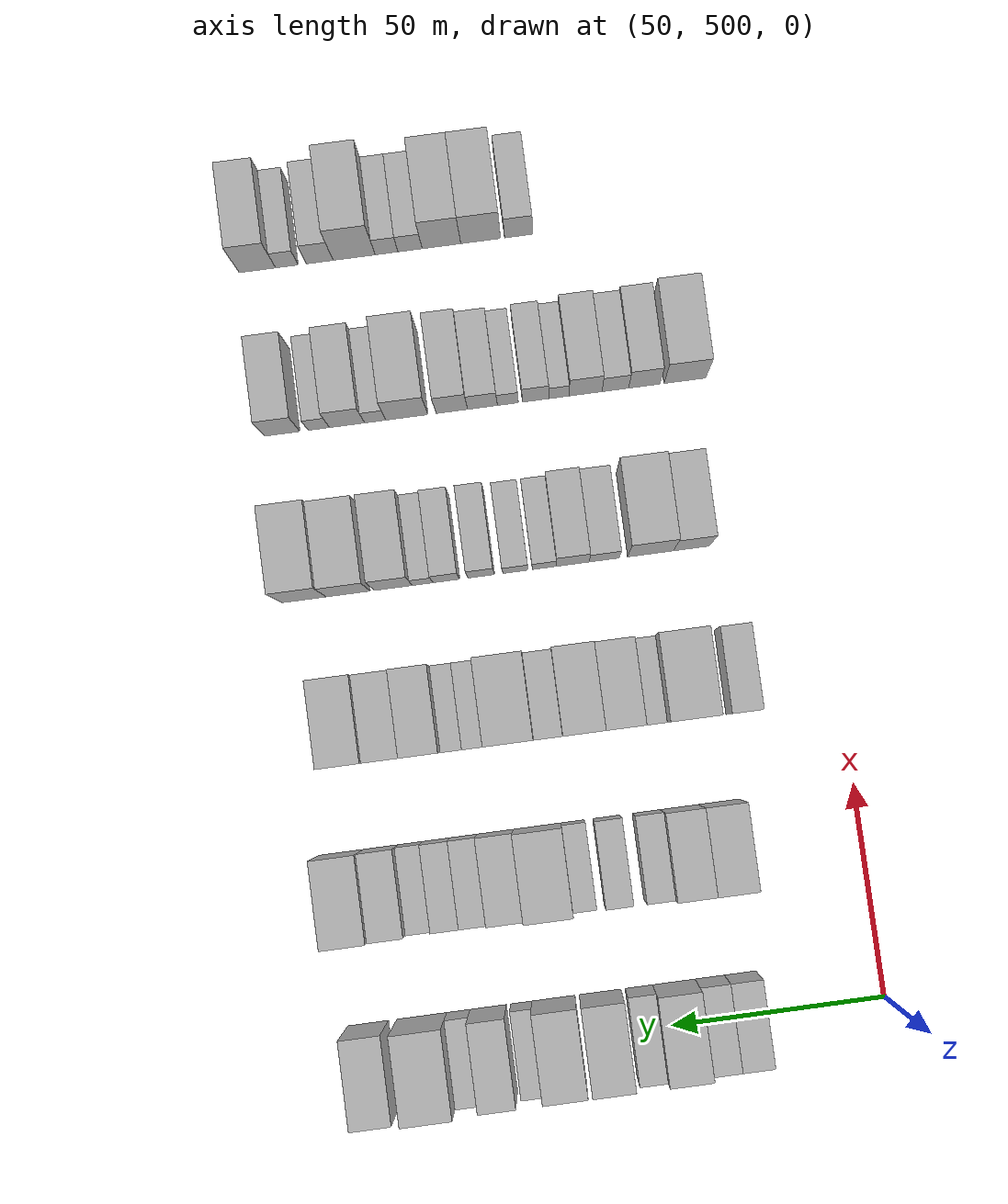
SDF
<sdf version="1.6">
 <world name="default">
  <model name="building_129">
   <static>1</static>
   <pose>50.0000 532.6095 0 0.000000 0.000000 0.000000</pose>
   <link name="link">
    <pose>0 0 7.50 0 0 0</pose>
    <collision name="collision"><geometry><box><size>20.0000 7.3987 15.0000</size></box></geometry></collision>
    <visual name="visual">
     <cast_shadows>0</cast_shadows>
     <geometry><box><size>20.0000 7.3987 15.0000</size></box></geometry>
     <material>
      <script>
       <uri>model://HANNAS_wall/materials/scripts</uri>
       <uri>model://HANNAS_wall/materials/textures</uri>
       <name>vrc/HANNAS_wall</name>
      </script>
     </material>
    </visual>
   </link>
  </model>
  <model name="building_130">
   <static>1</static>
   <pose>50.0000 539.7570 0 0.000000 0.000000 0.000000</pose>
   <link name="link">
    <pose>0 0 7.50 0 0 0</pose>
    <collision name="collision"><geometry><box><size>20.0000 6.8963 15.0000</size></box></geometry></collision>
    <visual name="visual">
     <cast_shadows>0</cast_shadows>
     <geometry><box><size>20.0000 6.8963 15.0000</size></box></geometry>
     <material>
      <script>
       <uri>model://HANNAS_wall/materials/scripts</uri>
       <uri>model://HANNAS_wall/materials/textures</uri>
       <name>vrc/HANNAS_wall</name>
      </script>
     </material>
    </visual>
   </link>
  </model>
  <model name="building_131">
   <static>1</static>
   <pose>50.0000 548.2074 0 0.000000 0.000000 0.000000</pose>
   <link name="link">
    <pose>0 0 10.50 0 0 0</pose>
    <collision name="collision"><geometry><box><size>20.0000 10.0045 21.0000</size></box></geometry></collision>
    <visual name="visual">
     <cast_shadows>0</cast_shadows>
     <geometry><box><size>20.0000 10.0045 21.0000</size></box></geometry>
     <material>
      <script>
       <uri>model://HANNAS_wall/materials/scripts</uri>
       <uri>model://HANNAS_wall/materials/textures</uri>
       <name>vrc/HANNAS_wall</name>
      </script>
     </material>
    </visual>
   </link>
  </model>
  <model name="building_132">
   <static>1</static>
   <pose>50.0000 556.4147 0 0.000000 0.000000 0.000000</pose>
   <link name="link">
    <pose>0 0 7.50 0 0 0</pose>
    <collision name="collision"><geometry><box><size>20.0000 6.4102 15.0000</size></box></geometry></collision>
    <visual name="visual">
     <cast_shadows>0</cast_shadows>
     <geometry><box><size>20.0000 6.4102 15.0000</size></box></geometry>
     <material>
      <script>
       <uri>model://HANNAS_wall/materials/scripts</uri>
       <uri>model://HANNAS_wall/materials/textures</uri>
       <name>vrc/HANNAS_wall</name>
      </script>
     </material>
    </visual>
   </link>
  </model>
  <model name="building_133">
   <static>1</static>
   <pose>50.0000 565.5105 0 0.000000 0.000000 0.000000</pose>
   <link name="link">
    <pose>0 0 10.50 0 0 0</pose>
    <collision name="collision"><geometry><box><size>20.0000 9.7813 21.0000</size></box></geometry></collision>
    <visual name="visual">
     <cast_shadows>0</cast_shadows>
     <geometry><box><size>20.0000 9.7813 21.0000</size></box></geometry>
     <material>
      <script>
       <uri>model://HANNAS_wall/materials/scripts</uri>
       <uri>model://HANNAS_wall/materials/textures</uri>
       <name>vrc/HANNAS_wall</name>
      </script>
     </material>
    </visual>
   </link>
  </model>
  <model name="building_134">
   <static>1</static>
   <pose>50.0000 576.4896 0 0.000000 0.000000 0.000000</pose>
   <link name="link">
    <pose>0 0 10.50 0 0 0</pose>
    <collision name="collision"><geometry><box><size>20.0000 10.1770 21.0000</size></box></geometry></collision>
    <visual name="visual">
     <cast_shadows>0</cast_shadows>
     <geometry><box><size>20.0000 10.1770 21.0000</size></box></geometry>
     <material>
      <script>
       <uri>model://HANNAS_wall/materials/scripts</uri>
       <uri>model://HANNAS_wall/materials/textures</uri>
       <name>vrc/HANNAS_wall</name>
      </script>
     </material>
    </visual>
   </link>
  </model>
  <model name="building_135">
   <static>1</static>
   <pose>50.0000 584.0382 0 0.000000 0.000000 0.000000</pose>
   <link name="link">
    <pose>0 0 6.00 0 0 0</pose>
    <collision name="collision"><geometry><box><size>20.0000 4.9200 12.0000</size></box></geometry></collision>
    <visual name="visual">
     <cast_shadows>0</cast_shadows>
     <geometry><box><size>20.0000 4.9200 12.0000</size></box></geometry>
     <material>
      <script>
       <uri>model://HANNAS_wall/materials/scripts</uri>
       <uri>model://HANNAS_wall/materials/textures</uri>
       <name>vrc/HANNAS_wall</name>
      </script>
     </material>
    </visual>
   </link>
  </model>
  <model name="building_136">
   <static>1</static>
   <pose>50.0000 591.7661 0 0.000000 0.000000 0.000000</pose>
   <link name="link">
    <pose>0 0 10.50 0 0 0</pose>
    <collision name="collision"><geometry><box><size>20.0000 8.5358 21.0000</size></box></geometry></collision>
    <visual name="visual">
     <cast_shadows>0</cast_shadows>
     <geometry><box><size>20.0000 8.5358 21.0000</size></box></geometry>
     <material>
      <script>
       <uri>model://HANNAS_wall/materials/scripts</uri>
       <uri>model://HANNAS_wall/materials/textures</uri>
       <name>vrc/HANNAS_wall</name>
      </script>
     </material>
    </visual>
   </link>
  </model>
  <model name="building_137">
   <static>1</static>
   <pose>50.0000 598.7545 0 0.000000 0.000000 0.000000</pose>
   <link name="link">
    <pose>0 0 6.00 0 0 0</pose>
    <collision name="collision"><geometry><box><size>20.0000 5.4409 12.0000</size></box></geometry></collision>
    <visual name="visual">
     <cast_shadows>0</cast_shadows>
     <geometry><box><size>20.0000 5.4409 12.0000</size></box></geometry>
     <material>
      <script>
       <uri>model://HANNAS_wall/materials/scripts</uri>
       <uri>model://HANNAS_wall/materials/textures</uri>
       <name>vrc/HANNAS_wall</name>
      </script>
     </material>
    </visual>
   </link>
  </model>
  <model name="building_138">
   <static>1</static>
   <pose>50.0000 607.3032 0 0.000000 0.000000 0.000000</pose>
   <link name="link">
    <pose>0 0 12.00 0 0 0</pose>
    <collision name="collision"><geometry><box><size>20.0000 11.6565 24.0000</size></box></geometry></collision>
    <visual name="visual">
     <cast_shadows>0</cast_shadows>
     <geometry><box><size>20.0000 11.6565 24.0000</size></box></geometry>
     <material>
      <script>
       <uri>model://HANNAS_wall/materials/scripts</uri>
       <uri>model://HANNAS_wall/materials/textures</uri>
       <name>vrc/HANNAS_wall</name>
      </script>
     </material>
    </visual>
   </link>
  </model>
  <model name="building_139">
   <static>1</static>
   <pose>50.0000 619.8653 0 0.000000 0.000000 0.000000</pose>
   <link name="link">
    <pose>0 0 10.50 0 0 0</pose>
    <collision name="collision"><geometry><box><size>20.0000 9.4678 21.0000</size></box></geometry></collision>
    <visual name="visual">
     <cast_shadows>0</cast_shadows>
     <geometry><box><size>20.0000 9.4678 21.0000</size></box></geometry>
     <material>
      <script>
       <uri>model://HANNAS_wall/materials/scripts</uri>
       <uri>model://HANNAS_wall/materials/textures</uri>
       <name>vrc/HANNAS_wall</name>
      </script>
     </material>
    </visual>
   </link>
  </model>
  <model name="building_268">
   <static>1</static>
   <pose>90.0000 532.1376 0 0.000000 0.000000 0.000000</pose>
   <link name="link">
    <pose>0 0 10.50 0 0 0</pose>
    <collision name="collision"><geometry><box><size>20.0000 9.5505 21.0000</size></box></geometry></collision>
    <visual name="visual">
     <cast_shadows>0</cast_shadows>
     <geometry><box><size>20.0000 9.5505 21.0000</size></box></geometry>
     <material>
      <script>
       <uri>model://HANNAS_wall/materials/scripts</uri>
       <uri>model://HANNAS_wall/materials/textures</uri>
       <name>vrc/HANNAS_wall</name>
      </script>
     </material>
    </visual>
   </link>
  </model>
  <model name="building_269">
   <static>1</static>
   <pose>90.0000 541.4288 0 0.000000 0.000000 0.000000</pose>
   <link name="link">
    <pose>0 0 10.50 0 0 0</pose>
    <collision name="collision"><geometry><box><size>20.0000 9.0320 21.0000</size></box></geometry></collision>
    <visual name="visual">
     <cast_shadows>0</cast_shadows>
     <geometry><box><size>20.0000 9.0320 21.0000</size></box></geometry>
     <material>
      <script>
       <uri>model://HANNAS_wall/materials/scripts</uri>
       <uri>model://HANNAS_wall/materials/textures</uri>
       <name>vrc/HANNAS_wall</name>
      </script>
     </material>
    </visual>
   </link>
  </model>
  <model name="building_270">
   <static>1</static>
   <pose>90.0000 549.2292 0 0.000000 0.000000 0.000000</pose>
   <link name="link">
    <pose>0 0 7.50 0 0 0</pose>
    <collision name="collision"><geometry><box><size>20.0000 6.5686 15.0000</size></box></geometry></collision>
    <visual name="visual">
     <cast_shadows>0</cast_shadows>
     <geometry><box><size>20.0000 6.5686 15.0000</size></box></geometry>
     <material>
      <script>
       <uri>model://HANNAS_wall/materials/scripts</uri>
       <uri>model://HANNAS_wall/materials/textures</uri>
       <name>vrc/HANNAS_wall</name>
      </script>
     </material>
    </visual>
   </link>
  </model>
  <model name="building_271">
   <static>1</static>
   <pose>90.0000 558.6888 0 0.000000 0.000000 0.000000</pose>
   <link name="link">
    <pose>0 0 7.50 0 0 0</pose>
    <collision name="collision"><geometry><box><size>20.0000 6.3506 15.0000</size></box></geometry></collision>
    <visual name="visual">
     <cast_shadows>0</cast_shadows>
     <geometry><box><size>20.0000 6.3506 15.0000</size></box></geometry>
     <material>
      <script>
       <uri>model://HANNAS_wall/materials/scripts</uri>
       <uri>model://HANNAS_wall/materials/textures</uri>
       <name>vrc/HANNAS_wall</name>
      </script>
     </material>
    </visual>
   </link>
  </model>
  <model name="building_272">
   <static>1</static>
   <pose>90.0000 566.6021 0 0.000000 0.000000 0.000000</pose>
   <link name="link">
    <pose>0 0 6.00 0 0 0</pose>
    <collision name="collision"><geometry><box><size>20.0000 5.4760 12.0000</size></box></geometry></collision>
    <visual name="visual">
     <cast_shadows>0</cast_shadows>
     <geometry><box><size>20.0000 5.4760 12.0000</size></box></geometry>
     <material>
      <script>
       <uri>model://HANNAS_wall/materials/scripts</uri>
       <uri>model://HANNAS_wall/materials/textures</uri>
       <name>vrc/HANNAS_wall</name>
      </script>
     </material>
    </visual>
   </link>
  </model>
  <model name="building_273">
   <static>1</static>
   <pose>90.0000 574.9478 0 0.000000 0.000000 0.000000</pose>
   <link name="link">
    <pose>0 0 12.00 0 0 0</pose>
    <collision name="collision"><geometry><box><size>20.0000 11.2155 24.0000</size></box></geometry></collision>
    <visual name="visual">
     <cast_shadows>0</cast_shadows>
     <geometry><box><size>20.0000 11.2155 24.0000</size></box></geometry>
     <material>
      <script>
       <uri>model://HANNAS_wall/materials/scripts</uri>
       <uri>model://HANNAS_wall/materials/textures</uri>
       <name>vrc/HANNAS_wall</name>
      </script>
     </material>
    </visual>
   </link>
  </model>
  <model name="building_274">
   <static>1</static>
   <pose>90.0000 584.8134 0 0.000000 0.000000 0.000000</pose>
   <link name="link">
    <pose>0 0 9.00 0 0 0</pose>
    <collision name="collision"><geometry><box><size>20.0000 8.5156 18.0000</size></box></geometry></collision>
    <visual name="visual">
     <cast_shadows>0</cast_shadows>
     <geometry><box><size>20.0000 8.5156 18.0000</size></box></geometry>
     <material>
      <script>
       <uri>model://HANNAS_wall/materials/scripts</uri>
       <uri>model://HANNAS_wall/materials/textures</uri>
       <name>vrc/HANNAS_wall</name>
      </script>
     </material>
    </visual>
   </link>
  </model>
  <model name="building_275">
   <static>1</static>
   <pose>90.0000 592.2233 0 0.000000 0.000000 0.000000</pose>
   <link name="link">
    <pose>0 0 7.50 0 0 0</pose>
    <collision name="collision"><geometry><box><size>20.0000 6.3043 15.0000</size></box></geometry></collision>
    <visual name="visual">
     <cast_shadows>0</cast_shadows>
     <geometry><box><size>20.0000 6.3043 15.0000</size></box></geometry>
     <material>
      <script>
       <uri>model://HANNAS_wall/materials/scripts</uri>
       <uri>model://HANNAS_wall/materials/textures</uri>
       <name>vrc/HANNAS_wall</name>
      </script>
     </material>
    </visual>
   </link>
  </model>
  <model name="building_276">
   <static>1</static>
   <pose>90.0000 598.5919 0 0.000000 0.000000 0.000000</pose>
   <link name="link">
    <pose>0 0 7.50 0 0 0</pose>
    <collision name="collision"><geometry><box><size>20.0000 6.4328 15.0000</size></box></geometry></collision>
    <visual name="visual">
     <cast_shadows>0</cast_shadows>
     <geometry><box><size>20.0000 6.4328 15.0000</size></box></geometry>
     <material>
      <script>
       <uri>model://HANNAS_wall/materials/scripts</uri>
       <uri>model://HANNAS_wall/materials/textures</uri>
       <name>vrc/HANNAS_wall</name>
      </script>
     </material>
    </visual>
   </link>
  </model>
  <model name="building_277">
   <static>1</static>
   <pose>90.0000 604.7399 0 0.000000 0.000000 0.000000</pose>
   <link name="link">
    <pose>0 0 6.00 0 0 0</pose>
    <collision name="collision"><geometry><box><size>20.0000 5.8633 12.0000</size></box></geometry></collision>
    <visual name="visual">
     <cast_shadows>0</cast_shadows>
     <geometry><box><size>20.0000 5.8633 12.0000</size></box></geometry>
     <material>
      <script>
       <uri>model://HANNAS_wall/materials/scripts</uri>
       <uri>model://HANNAS_wall/materials/textures</uri>
       <name>vrc/HANNAS_wall</name>
      </script>
     </material>
    </visual>
   </link>
  </model>
  <model name="building_278">
   <static>1</static>
   <pose>90.0000 611.7809 0 0.000000 0.000000 0.000000</pose>
   <link name="link">
    <pose>0 0 9.00 0 0 0</pose>
    <collision name="collision"><geometry><box><size>20.0000 8.2188 18.0000</size></box></geometry></collision>
    <visual name="visual">
     <cast_shadows>0</cast_shadows>
     <geometry><box><size>20.0000 8.2188 18.0000</size></box></geometry>
     <material>
      <script>
       <uri>model://HANNAS_wall/materials/scripts</uri>
       <uri>model://HANNAS_wall/materials/textures</uri>
       <name>vrc/HANNAS_wall</name>
      </script>
     </material>
    </visual>
   </link>
  </model>
  <model name="building_279">
   <static>1</static>
   <pose>90.0000 621.0968 0 0.000000 0.000000 0.000000</pose>
   <link name="link">
    <pose>0 0 10.50 0 0 0</pose>
    <collision name="collision"><geometry><box><size>20.0000 10.4128 21.0000</size></box></geometry></collision>
    <visual name="visual">
     <cast_shadows>0</cast_shadows>
     <geometry><box><size>20.0000 10.4128 21.0000</size></box></geometry>
     <material>
      <script>
       <uri>model://HANNAS_wall/materials/scripts</uri>
       <uri>model://HANNAS_wall/materials/textures</uri>
       <name>vrc/HANNAS_wall</name>
      </script>
     </material>
    </visual>
   </link>
  </model>
  <model name="building_413">
   <static>1</static>
   <pose>130.0000 523.8679 0 0.000000 0.000000 0.000000</pose>
   <link name="link">
    <pose>0 0 7.50 0 0 0</pose>
    <collision name="collision"><geometry><box><size>20.0000 7.2931 15.0000</size></box></geometry></collision>
    <visual name="visual">
     <cast_shadows>0</cast_shadows>
     <geometry><box><size>20.0000 7.2931 15.0000</size></box></geometry>
     <material>
      <script>
       <uri>model://HANNAS_wall/materials/scripts</uri>
       <uri>model://HANNAS_wall/materials/textures</uri>
       <name>vrc/HANNAS_wall</name>
      </script>
     </material>
    </visual>
   </link>
  </model>
  <model name="building_414">
   <static>1</static>
   <pose>130.0000 536.3683 0 0.000000 0.000000 0.000000</pose>
   <link name="link">
    <pose>0 0 12.00 0 0 0</pose>
    <collision name="collision"><geometry><box><size>20.0000 11.7076 24.0000</size></box></geometry></collision>
    <visual name="visual">
     <cast_shadows>0</cast_shadows>
     <geometry><box><size>20.0000 11.7076 24.0000</size></box></geometry>
     <material>
      <script>
       <uri>model://HANNAS_wall/materials/scripts</uri>
       <uri>model://HANNAS_wall/materials/textures</uri>
       <name>vrc/HANNAS_wall</name>
      </script>
     </material>
    </visual>
   </link>
  </model>
  <model name="building_415">
   <static>1</static>
   <pose>130.0000 544.7975 0 0.000000 0.000000 0.000000</pose>
   <link name="link">
    <pose>0 0 6.00 0 0 0</pose>
    <collision name="collision"><geometry><box><size>20.0000 5.1509 12.0000</size></box></geometry></collision>
    <visual name="visual">
     <cast_shadows>0</cast_shadows>
     <geometry><box><size>20.0000 5.1509 12.0000</size></box></geometry>
     <material>
      <script>
       <uri>model://HANNAS_wall/materials/scripts</uri>
       <uri>model://HANNAS_wall/materials/textures</uri>
       <name>vrc/HANNAS_wall</name>
      </script>
     </material>
    </visual>
   </link>
  </model>
  <model name="building_416">
   <static>1</static>
   <pose>130.0000 552.0132 0 0.000000 0.000000 0.000000</pose>
   <link name="link">
    <pose>0 0 10.50 0 0 0</pose>
    <collision name="collision"><geometry><box><size>20.0000 9.2804 21.0000</size></box></geometry></collision>
    <visual name="visual">
     <cast_shadows>0</cast_shadows>
     <geometry><box><size>20.0000 9.2804 21.0000</size></box></geometry>
     <material>
      <script>
       <uri>model://HANNAS_wall/materials/scripts</uri>
       <uri>model://HANNAS_wall/materials/textures</uri>
       <name>vrc/HANNAS_wall</name>
      </script>
     </material>
    </visual>
   </link>
  </model>
  <model name="building_417">
   <static>1</static>
   <pose>130.0000 561.5154 0 0.000000 0.000000 0.000000</pose>
   <link name="link">
    <pose>0 0 12.00 0 0 0</pose>
    <collision name="collision"><geometry><box><size>20.0000 9.7239 24.0000</size></box></geometry></collision>
    <visual name="visual">
     <cast_shadows>0</cast_shadows>
     <geometry><box><size>20.0000 9.7239 24.0000</size></box></geometry>
     <material>
      <script>
       <uri>model://HANNAS_wall/materials/scripts</uri>
       <uri>model://HANNAS_wall/materials/textures</uri>
       <name>vrc/HANNAS_wall</name>
      </script>
     </material>
    </visual>
   </link>
  </model>
  <model name="building_418">
   <static>1</static>
   <pose>130.0000 569.6986 0 0.000000 0.000000 0.000000</pose>
   <link name="link">
    <pose>0 0 7.50 0 0 0</pose>
    <collision name="collision"><geometry><box><size>20.0000 6.6426 15.0000</size></box></geometry></collision>
    <visual name="visual">
     <cast_shadows>0</cast_shadows>
     <geometry><box><size>20.0000 6.6426 15.0000</size></box></geometry>
     <material>
      <script>
       <uri>model://HANNAS_wall/materials/scripts</uri>
       <uri>model://HANNAS_wall/materials/textures</uri>
       <name>vrc/HANNAS_wall</name>
      </script>
     </material>
    </visual>
   </link>
  </model>
  <model name="building_419">
   <static>1</static>
   <pose>130.0000 578.7010 0 0.000000 0.000000 0.000000</pose>
   <link name="link">
    <pose>0 0 12.00 0 0 0</pose>
    <collision name="collision"><geometry><box><size>20.0000 11.3622 24.0000</size></box></geometry></collision>
    <visual name="visual">
     <cast_shadows>0</cast_shadows>
     <geometry><box><size>20.0000 11.3622 24.0000</size></box></geometry>
     <material>
      <script>
       <uri>model://HANNAS_wall/materials/scripts</uri>
       <uri>model://HANNAS_wall/materials/textures</uri>
       <name>vrc/HANNAS_wall</name>
      </script>
     </material>
    </visual>
   </link>
  </model>
  <model name="building_420">
   <static>1</static>
   <pose>130.0000 586.9950 0 0.000000 0.000000 0.000000</pose>
   <link name="link">
    <pose>0 0 6.00 0 0 0</pose>
    <collision name="collision"><geometry><box><size>20.0000 5.2257 12.0000</size></box></geometry></collision>
    <visual name="visual">
     <cast_shadows>0</cast_shadows>
     <geometry><box><size>20.0000 5.2257 12.0000</size></box></geometry>
     <material>
      <script>
       <uri>model://HANNAS_wall/materials/scripts</uri>
       <uri>model://HANNAS_wall/materials/textures</uri>
       <name>vrc/HANNAS_wall</name>
      </script>
     </material>
    </visual>
   </link>
  </model>
  <model name="building_421">
   <static>1</static>
   <pose>130.0000 592.0658 0 0.000000 0.000000 0.000000</pose>
   <link name="link">
    <pose>0 0 6.00 0 0 0</pose>
    <collision name="collision"><geometry><box><size>20.0000 4.9160 12.0000</size></box></geometry></collision>
    <visual name="visual">
     <cast_shadows>0</cast_shadows>
     <geometry><box><size>20.0000 4.9160 12.0000</size></box></geometry>
     <material>
      <script>
       <uri>model://HANNAS_wall/materials/scripts</uri>
       <uri>model://HANNAS_wall/materials/textures</uri>
       <name>vrc/HANNAS_wall</name>
      </script>
     </material>
    </visual>
   </link>
  </model>
  <model name="building_422">
   <static>1</static>
   <pose>130.0000 599.0145 0 0.000000 0.000000 0.000000</pose>
   <link name="link">
    <pose>0 0 10.50 0 0 0</pose>
    <collision name="collision"><geometry><box><size>20.0000 8.9814 21.0000</size></box></geometry></collision>
    <visual name="visual">
     <cast_shadows>0</cast_shadows>
     <geometry><box><size>20.0000 8.9814 21.0000</size></box></geometry>
     <material>
      <script>
       <uri>model://HANNAS_wall/materials/scripts</uri>
       <uri>model://HANNAS_wall/materials/textures</uri>
       <name>vrc/HANNAS_wall</name>
      </script>
     </material>
    </visual>
   </link>
  </model>
  <model name="building_423">
   <static>1</static>
   <pose>130.0000 607.8346 0 0.000000 0.000000 0.000000</pose>
   <link name="link">
    <pose>0 0 9.00 0 0 0</pose>
    <collision name="collision"><geometry><box><size>20.0000 8.6588 18.0000</size></box></geometry></collision>
    <visual name="visual">
     <cast_shadows>0</cast_shadows>
     <geometry><box><size>20.0000 8.6588 18.0000</size></box></geometry>
     <material>
      <script>
       <uri>model://HANNAS_wall/materials/scripts</uri>
       <uri>model://HANNAS_wall/materials/textures</uri>
       <name>vrc/HANNAS_wall</name>
      </script>
     </material>
    </visual>
   </link>
  </model>
  <model name="building_424">
   <static>1</static>
   <pose>130.0000 617.2051 0 0.000000 0.000000 0.000000</pose>
   <link name="link">
    <pose>0 0 10.50 0 0 0</pose>
    <collision name="collision"><geometry><box><size>20.0000 10.0821 21.0000</size></box></geometry></collision>
    <visual name="visual">
     <cast_shadows>0</cast_shadows>
     <geometry><box><size>20.0000 10.0821 21.0000</size></box></geometry>
     <material>
      <script>
       <uri>model://HANNAS_wall/materials/scripts</uri>
       <uri>model://HANNAS_wall/materials/textures</uri>
       <name>vrc/HANNAS_wall</name>
      </script>
     </material>
    </visual>
   </link>
  </model>
  <model name="building_558">
   <static>1</static>
   <pose>170.0000 530.1479 0 0.000000 0.000000 0.000000</pose>
   <link name="link">
    <pose>0 0 10.50 0 0 0</pose>
    <collision name="collision"><geometry><box><size>20.0000 8.6776 21.0000</size></box></geometry></collision>
    <visual name="visual">
     <cast_shadows>0</cast_shadows>
     <geometry><box><size>20.0000 8.6776 21.0000</size></box></geometry>
     <material>
      <script>
       <uri>model://HANNAS_wall/materials/scripts</uri>
       <uri>model://HANNAS_wall/materials/textures</uri>
       <name>vrc/HANNAS_wall</name>
      </script>
     </material>
    </visual>
   </link>
  </model>
  <model name="building_559">
   <static>1</static>
   <pose>170.0000 539.9513 0 0.000000 0.000000 0.000000</pose>
   <link name="link">
    <pose>0 0 12.00 0 0 0</pose>
    <collision name="collision"><geometry><box><size>20.0000 10.9292 24.0000</size></box></geometry></collision>
    <visual name="visual">
     <cast_shadows>0</cast_shadows>
     <geometry><box><size>20.0000 10.9292 24.0000</size></box></geometry>
     <material>
      <script>
       <uri>model://HANNAS_wall/materials/scripts</uri>
       <uri>model://HANNAS_wall/materials/textures</uri>
       <name>vrc/HANNAS_wall</name>
      </script>
     </material>
    </visual>
   </link>
  </model>
  <model name="building_560">
   <static>1</static>
   <pose>170.0000 551.0055 0 0.000000 0.000000 0.000000</pose>
   <link name="link">
    <pose>0 0 7.50 0 0 0</pose>
    <collision name="collision"><geometry><box><size>20.0000 7.1792 15.0000</size></box></geometry></collision>
    <visual name="visual">
     <cast_shadows>0</cast_shadows>
     <geometry><box><size>20.0000 7.1792 15.0000</size></box></geometry>
     <material>
      <script>
       <uri>model://HANNAS_wall/materials/scripts</uri>
       <uri>model://HANNAS_wall/materials/textures</uri>
       <name>vrc/HANNAS_wall</name>
      </script>
     </material>
    </visual>
   </link>
  </model>
  <model name="building_561">
   <static>1</static>
   <pose>170.0000 558.4996 0 0.000000 0.000000 0.000000</pose>
   <link name="link">
    <pose>0 0 9.00 0 0 0</pose>
    <collision name="collision"><geometry><box><size>20.0000 7.8091 18.0000</size></box></geometry></collision>
    <visual name="visual">
     <cast_shadows>0</cast_shadows>
     <geometry><box><size>20.0000 7.8091 18.0000</size></box></geometry>
     <material>
      <script>
       <uri>model://HANNAS_wall/materials/scripts</uri>
       <uri>model://HANNAS_wall/materials/textures</uri>
       <name>vrc/HANNAS_wall</name>
      </script>
     </material>
    </visual>
   </link>
  </model>
  <model name="building_562">
   <static>1</static>
   <pose>170.0000 565.2719 0 0.000000 0.000000 0.000000</pose>
   <link name="link">
    <pose>0 0 6.00 0 0 0</pose>
    <collision name="collision"><geometry><box><size>20.0000 5.7355 12.0000</size></box></geometry></collision>
    <visual name="visual">
     <cast_shadows>0</cast_shadows>
     <geometry><box><size>20.0000 5.7355 12.0000</size></box></geometry>
     <material>
      <script>
       <uri>model://HANNAS_wall/materials/scripts</uri>
       <uri>model://HANNAS_wall/materials/textures</uri>
       <name>vrc/HANNAS_wall</name>
      </script>
     </material>
    </visual>
   </link>
  </model>
  <model name="building_563">
   <static>1</static>
   <pose>170.0000 572.1394 0 0.000000 0.000000 0.000000</pose>
   <link name="link">
    <pose>0 0 6.00 0 0 0</pose>
    <collision name="collision"><geometry><box><size>20.0000 5.9994 12.0000</size></box></geometry></collision>
    <visual name="visual">
     <cast_shadows>0</cast_shadows>
     <geometry><box><size>20.0000 5.9994 12.0000</size></box></geometry>
     <material>
      <script>
       <uri>model://HANNAS_wall/materials/scripts</uri>
       <uri>model://HANNAS_wall/materials/textures</uri>
       <name>vrc/HANNAS_wall</name>
      </script>
     </material>
    </visual>
   </link>
  </model>
  <model name="building_564">
   <static>1</static>
   <pose>170.0000 580.2831 0 0.000000 0.000000 0.000000</pose>
   <link name="link">
    <pose>0 0 7.50 0 0 0</pose>
    <collision name="collision"><geometry><box><size>20.0000 6.2881 15.0000</size></box></geometry></collision>
    <visual name="visual">
     <cast_shadows>0</cast_shadows>
     <geometry><box><size>20.0000 6.2881 15.0000</size></box></geometry>
     <material>
      <script>
       <uri>model://HANNAS_wall/materials/scripts</uri>
       <uri>model://HANNAS_wall/materials/textures</uri>
       <name>vrc/HANNAS_wall</name>
      </script>
     </material>
    </visual>
   </link>
  </model>
  <model name="building_565">
   <static>1</static>
   <pose>170.0000 588.5981 0 0.000000 0.000000 0.000000</pose>
   <link name="link">
    <pose>0 0 7.50 0 0 0</pose>
    <collision name="collision"><geometry><box><size>20.0000 6.3418 15.0000</size></box></geometry></collision>
    <visual name="visual">
     <cast_shadows>0</cast_shadows>
     <geometry><box><size>20.0000 6.3418 15.0000</size></box></geometry>
     <material>
      <script>
       <uri>model://HANNAS_wall/materials/scripts</uri>
       <uri>model://HANNAS_wall/materials/textures</uri>
       <name>vrc/HANNAS_wall</name>
      </script>
     </material>
    </visual>
   </link>
  </model>
  <model name="building_566">
   <static>1</static>
   <pose>170.0000 594.2245 0 0.000000 0.000000 0.000000</pose>
   <link name="link">
    <pose>0 0 6.00 0 0 0</pose>
    <collision name="collision"><geometry><box><size>20.0000 4.9111 12.0000</size></box></geometry></collision>
    <visual name="visual">
     <cast_shadows>0</cast_shadows>
     <geometry><box><size>20.0000 4.9111 12.0000</size></box></geometry>
     <material>
      <script>
       <uri>model://HANNAS_wall/materials/scripts</uri>
       <uri>model://HANNAS_wall/materials/textures</uri>
       <name>vrc/HANNAS_wall</name>
      </script>
     </material>
    </visual>
   </link>
  </model>
  <model name="building_567">
   <static>1</static>
   <pose>170.0000 601.2148 0 0.000000 0.000000 0.000000</pose>
   <link name="link">
    <pose>0 0 10.50 0 0 0</pose>
    <collision name="collision"><geometry><box><size>20.0000 9.0694 21.0000</size></box></geometry></collision>
    <visual name="visual">
     <cast_shadows>0</cast_shadows>
     <geometry><box><size>20.0000 9.0694 21.0000</size></box></geometry>
     <material>
      <script>
       <uri>model://HANNAS_wall/materials/scripts</uri>
       <uri>model://HANNAS_wall/materials/textures</uri>
       <name>vrc/HANNAS_wall</name>
      </script>
     </material>
    </visual>
   </link>
  </model>
  <model name="building_568">
   <static>1</static>
   <pose>170.0000 611.9734 0 0.000000 0.000000 0.000000</pose>
   <link name="link">
    <pose>0 0 10.50 0 0 0</pose>
    <collision name="collision"><geometry><box><size>20.0000 10.4477 21.0000</size></box></geometry></collision>
    <visual name="visual">
     <cast_shadows>0</cast_shadows>
     <geometry><box><size>20.0000 10.4477 21.0000</size></box></geometry>
     <material>
      <script>
       <uri>model://HANNAS_wall/materials/scripts</uri>
       <uri>model://HANNAS_wall/materials/textures</uri>
       <name>vrc/HANNAS_wall</name>
      </script>
     </material>
    </visual>
   </link>
  </model>
  <model name="building_569">
   <static>1</static>
   <pose>170.0000 622.5005 0 0.000000 0.000000 0.000000</pose>
   <link name="link">
    <pose>0 0 12.00 0 0 0</pose>
    <collision name="collision"><geometry><box><size>20.0000 10.6064 24.0000</size></box></geometry></collision>
    <visual name="visual">
     <cast_shadows>0</cast_shadows>
     <geometry><box><size>20.0000 10.6064 24.0000</size></box></geometry>
     <material>
      <script>
       <uri>model://HANNAS_wall/materials/scripts</uri>
       <uri>model://HANNAS_wall/materials/textures</uri>
       <name>vrc/HANNAS_wall</name>
      </script>
     </material>
    </visual>
   </link>
  </model>
  <model name="building_701">
   <static>1</static>
   <pose>210.0000 526.2131 0 0.000000 0.000000 0.000000</pose>
   <link name="link">
    <pose>0 0 10.50 0 0 0</pose>
    <collision name="collision"><geometry><box><size>20.0000 10.0325 21.0000</size></box></geometry></collision>
    <visual name="visual">
     <cast_shadows>0</cast_shadows>
     <geometry><box><size>20.0000 10.0325 21.0000</size></box></geometry>
     <material>
      <script>
       <uri>model://HANNAS_wall/materials/scripts</uri>
       <uri>model://HANNAS_wall/materials/textures</uri>
       <name>vrc/HANNAS_wall</name>
      </script>
     </material>
    </visual>
   </link>
  </model>
  <model name="building_702">
   <static>1</static>
   <pose>210.0000 535.9770 0 0.000000 0.000000 0.000000</pose>
   <link name="link">
    <pose>0 0 9.00 0 0 0</pose>
    <collision name="collision"><geometry><box><size>20.0000 7.4954 18.0000</size></box></geometry></collision>
    <visual name="visual">
     <cast_shadows>0</cast_shadows>
     <geometry><box><size>20.0000 7.4954 18.0000</size></box></geometry>
     <material>
      <script>
       <uri>model://HANNAS_wall/materials/scripts</uri>
       <uri>model://HANNAS_wall/materials/textures</uri>
       <name>vrc/HANNAS_wall</name>
      </script>
     </material>
    </visual>
   </link>
  </model>
  <model name="building_703">
   <static>1</static>
   <pose>210.0000 542.9159 0 0.000000 0.000000 0.000000</pose>
   <link name="link">
    <pose>0 0 7.50 0 0 0</pose>
    <collision name="collision"><geometry><box><size>20.0000 6.3822 15.0000</size></box></geometry></collision>
    <visual name="visual">
     <cast_shadows>0</cast_shadows>
     <geometry><box><size>20.0000 6.3822 15.0000</size></box></geometry>
     <material>
      <script>
       <uri>model://HANNAS_wall/materials/scripts</uri>
       <uri>model://HANNAS_wall/materials/textures</uri>
       <name>vrc/HANNAS_wall</name>
      </script>
     </material>
    </visual>
   </link>
  </model>
  <model name="building_704">
   <static>1</static>
   <pose>210.0000 550.0592 0 0.000000 0.000000 0.000000</pose>
   <link name="link">
    <pose>0 0 9.00 0 0 0</pose>
    <collision name="collision"><geometry><box><size>20.0000 7.9044 18.0000</size></box></geometry></collision>
    <visual name="visual">
     <cast_shadows>0</cast_shadows>
     <geometry><box><size>20.0000 7.9044 18.0000</size></box></geometry>
     <material>
      <script>
       <uri>model://HANNAS_wall/materials/scripts</uri>
       <uri>model://HANNAS_wall/materials/textures</uri>
       <name>vrc/HANNAS_wall</name>
      </script>
     </material>
    </visual>
   </link>
  </model>
  <model name="building_705">
   <static>1</static>
   <pose>210.0000 556.4496 0 0.000000 0.000000 0.000000</pose>
   <link name="link">
    <pose>0 0 6.00 0 0 0</pose>
    <collision name="collision"><geometry><box><size>20.0000 4.8764 12.0000</size></box></geometry></collision>
    <visual name="visual">
     <cast_shadows>0</cast_shadows>
     <geometry><box><size>20.0000 4.8764 12.0000</size></box></geometry>
     <material>
      <script>
       <uri>model://HANNAS_wall/materials/scripts</uri>
       <uri>model://HANNAS_wall/materials/textures</uri>
       <name>vrc/HANNAS_wall</name>
      </script>
     </material>
    </visual>
   </link>
  </model>
  <model name="building_706">
   <static>1</static>
   <pose>210.0000 562.0382 0 0.000000 0.000000 0.000000</pose>
   <link name="link">
    <pose>0 0 7.50 0 0 0</pose>
    <collision name="collision"><geometry><box><size>20.0000 6.3008 15.0000</size></box></geometry></collision>
    <visual name="visual">
     <cast_shadows>0</cast_shadows>
     <geometry><box><size>20.0000 6.3008 15.0000</size></box></geometry>
     <material>
      <script>
       <uri>model://HANNAS_wall/materials/scripts</uri>
       <uri>model://HANNAS_wall/materials/textures</uri>
       <name>vrc/HANNAS_wall</name>
      </script>
     </material>
    </visual>
   </link>
  </model>
  <model name="building_707">
   <static>1</static>
   <pose>210.0000 568.6961 0 0.000000 0.000000 0.000000</pose>
   <link name="link">
    <pose>0 0 6.00 0 0 0</pose>
    <collision name="collision"><geometry><box><size>20.0000 5.0151 12.0000</size></box></geometry></collision>
    <visual name="visual">
     <cast_shadows>0</cast_shadows>
     <geometry><box><size>20.0000 5.0151 12.0000</size></box></geometry>
     <material>
      <script>
       <uri>model://HANNAS_wall/materials/scripts</uri>
       <uri>model://HANNAS_wall/materials/textures</uri>
       <name>vrc/HANNAS_wall</name>
      </script>
     </material>
    </visual>
   </link>
  </model>
  <model name="building_708">
   <static>1</static>
   <pose>210.0000 574.7718 0 0.000000 0.000000 0.000000</pose>
   <link name="link">
    <pose>0 0 7.50 0 0 0</pose>
    <collision name="collision"><geometry><box><size>20.0000 7.1362 15.0000</size></box></geometry></collision>
    <visual name="visual">
     <cast_shadows>0</cast_shadows>
     <geometry><box><size>20.0000 7.1362 15.0000</size></box></geometry>
     <material>
      <script>
       <uri>model://HANNAS_wall/materials/scripts</uri>
       <uri>model://HANNAS_wall/materials/textures</uri>
       <name>vrc/HANNAS_wall</name>
      </script>
     </material>
    </visual>
   </link>
  </model>
  <model name="building_709">
   <static>1</static>
   <pose>210.0000 582.1039 0 0.000000 0.000000 0.000000</pose>
   <link name="link">
    <pose>0 0 9.00 0 0 0</pose>
    <collision name="collision"><geometry><box><size>20.0000 7.5280 18.0000</size></box></geometry></collision>
    <visual name="visual">
     <cast_shadows>0</cast_shadows>
     <geometry><box><size>20.0000 7.5280 18.0000</size></box></geometry>
     <material>
      <script>
       <uri>model://HANNAS_wall/materials/scripts</uri>
       <uri>model://HANNAS_wall/materials/textures</uri>
       <name>vrc/HANNAS_wall</name>
      </script>
     </material>
    </visual>
   </link>
  </model>
  <model name="building_710">
   <static>1</static>
   <pose>210.0000 592.8993 0 0.000000 0.000000 0.000000</pose>
   <link name="link">
    <pose>0 0 10.50 0 0 0</pose>
    <collision name="collision"><geometry><box><size>20.0000 10.0626 21.0000</size></box></geometry></collision>
    <visual name="visual">
     <cast_shadows>0</cast_shadows>
     <geometry><box><size>20.0000 10.0626 21.0000</size></box></geometry>
     <material>
      <script>
       <uri>model://HANNAS_wall/materials/scripts</uri>
       <uri>model://HANNAS_wall/materials/textures</uri>
       <name>vrc/HANNAS_wall</name>
      </script>
     </material>
    </visual>
   </link>
  </model>
  <model name="building_711">
   <static>1</static>
   <pose>210.0000 600.4925 0 0.000000 0.000000 0.000000</pose>
   <link name="link">
    <pose>0 0 6.00 0 0 0</pose>
    <collision name="collision"><geometry><box><size>20.0000 5.1239 12.0000</size></box></geometry></collision>
    <visual name="visual">
     <cast_shadows>0</cast_shadows>
     <geometry><box><size>20.0000 5.1239 12.0000</size></box></geometry>
     <material>
      <script>
       <uri>model://HANNAS_wall/materials/scripts</uri>
       <uri>model://HANNAS_wall/materials/textures</uri>
       <name>vrc/HANNAS_wall</name>
      </script>
     </material>
    </visual>
   </link>
  </model>
  <model name="building_712">
   <static>1</static>
   <pose>210.0000 607.2710 0 0.000000 0.000000 0.000000</pose>
   <link name="link">
    <pose>0 0 9.00 0 0 0</pose>
    <collision name="collision"><geometry><box><size>20.0000 8.4331 18.0000</size></box></geometry></collision>
    <visual name="visual">
     <cast_shadows>0</cast_shadows>
     <geometry><box><size>20.0000 8.4331 18.0000</size></box></geometry>
     <material>
      <script>
       <uri>model://HANNAS_wall/materials/scripts</uri>
       <uri>model://HANNAS_wall/materials/textures</uri>
       <name>vrc/HANNAS_wall</name>
      </script>
     </material>
    </visual>
   </link>
  </model>
  <model name="building_713">
   <static>1</static>
   <pose>210.0000 614.0314 0 0.000000 0.000000 0.000000</pose>
   <link name="link">
    <pose>0 0 6.00 0 0 0</pose>
    <collision name="collision"><geometry><box><size>20.0000 5.0877 12.0000</size></box></geometry></collision>
    <visual name="visual">
     <cast_shadows>0</cast_shadows>
     <geometry><box><size>20.0000 5.0877 12.0000</size></box></geometry>
     <material>
      <script>
       <uri>model://HANNAS_wall/materials/scripts</uri>
       <uri>model://HANNAS_wall/materials/textures</uri>
       <name>vrc/HANNAS_wall</name>
      </script>
     </material>
    </visual>
   </link>
  </model>
  <model name="building_714">
   <static>1</static>
   <pose>210.0000 622.7848 0 0.000000 0.000000 0.000000</pose>
   <link name="link">
    <pose>0 0 9.00 0 0 0</pose>
    <collision name="collision"><geometry><box><size>20.0000 8.4191 18.0000</size></box></geometry></collision>
    <visual name="visual">
     <cast_shadows>0</cast_shadows>
     <geometry><box><size>20.0000 8.4191 18.0000</size></box></geometry>
     <material>
      <script>
       <uri>model://HANNAS_wall/materials/scripts</uri>
       <uri>model://HANNAS_wall/materials/textures</uri>
       <name>vrc/HANNAS_wall</name>
      </script>
     </material>
    </visual>
   </link>
  </model>
  <model name="building_840">
   <static>1</static>
   <pose>250.0000 560.8516 0 0.000000 0.000000 0.000000</pose>
   <link name="link">
    <pose>0 0 7.50 0 0 0</pose>
    <collision name="collision"><geometry><box><size>20.0000 6.7595 15.0000</size></box></geometry></collision>
    <visual name="visual">
     <cast_shadows>0</cast_shadows>
     <geometry><box><size>20.0000 6.7595 15.0000</size></box></geometry>
     <material>
      <script>
       <uri>model://HANNAS_wall/materials/scripts</uri>
       <uri>model://HANNAS_wall/materials/textures</uri>
       <name>vrc/HANNAS_wall</name>
      </script>
     </material>
    </visual>
   </link>
  </model>
  <model name="building_841">
   <static>1</static>
   <pose>250.0000 570.0254 0 0.000000 0.000000 0.000000</pose>
   <link name="link">
    <pose>0 0 10.50 0 0 0</pose>
    <collision name="collision"><geometry><box><size>20.0000 9.5881 21.0000</size></box></geometry></collision>
    <visual name="visual">
     <cast_shadows>0</cast_shadows>
     <geometry><box><size>20.0000 9.5881 21.0000</size></box></geometry>
     <material>
      <script>
       <uri>model://HANNAS_wall/materials/scripts</uri>
       <uri>model://HANNAS_wall/materials/textures</uri>
       <name>vrc/HANNAS_wall</name>
      </script>
     </material>
    </visual>
   </link>
  </model>
  <model name="building_842">
   <static>1</static>
   <pose>250.0000 579.4763 0 0.000000 0.000000 0.000000</pose>
   <link name="link">
    <pose>0 0 10.50 0 0 0</pose>
    <collision name="collision"><geometry><box><size>20.0000 9.3138 21.0000</size></box></geometry></collision>
    <visual name="visual">
     <cast_shadows>0</cast_shadows>
     <geometry><box><size>20.0000 9.3138 21.0000</size></box></geometry>
     <material>
      <script>
       <uri>model://HANNAS_wall/materials/scripts</uri>
       <uri>model://HANNAS_wall/materials/textures</uri>
       <name>vrc/HANNAS_wall</name>
      </script>
     </material>
    </visual>
   </link>
  </model>
  <model name="building_843">
   <static>1</static>
   <pose>250.0000 587.0454 0 0.000000 0.000000 0.000000</pose>
   <link name="link">
    <pose>0 0 6.00 0 0 0</pose>
    <collision name="collision"><geometry><box><size>20.0000 5.8244 12.0000</size></box></geometry></collision>
    <visual name="visual">
     <cast_shadows>0</cast_shadows>
     <geometry><box><size>20.0000 5.8244 12.0000</size></box></geometry>
     <material>
      <script>
       <uri>model://HANNAS_wall/materials/scripts</uri>
       <uri>model://HANNAS_wall/materials/textures</uri>
       <name>vrc/HANNAS_wall</name>
      </script>
     </material>
    </visual>
   </link>
  </model>
  <model name="building_844">
   <static>1</static>
   <pose>250.0000 592.7060 0 0.000000 0.000000 0.000000</pose>
   <link name="link">
    <pose>0 0 6.00 0 0 0</pose>
    <collision name="collision"><geometry><box><size>20.0000 5.4969 12.0000</size></box></geometry></collision>
    <visual name="visual">
     <cast_shadows>0</cast_shadows>
     <geometry><box><size>20.0000 5.4969 12.0000</size></box></geometry>
     <material>
      <script>
       <uri>model://HANNAS_wall/materials/scripts</uri>
       <uri>model://HANNAS_wall/materials/textures</uri>
       <name>vrc/HANNAS_wall</name>
      </script>
     </material>
    </visual>
   </link>
  </model>
  <model name="building_845">
   <static>1</static>
   <pose>250.0000 600.5281 0 0.000000 0.000000 0.000000</pose>
   <link name="link">
    <pose>0 0 12.00 0 0 0</pose>
    <collision name="collision"><geometry><box><size>20.0000 10.1474 24.0000</size></box></geometry></collision>
    <visual name="visual">
     <cast_shadows>0</cast_shadows>
     <geometry><box><size>20.0000 10.1474 24.0000</size></box></geometry>
     <material>
      <script>
       <uri>model://HANNAS_wall/materials/scripts</uri>
       <uri>model://HANNAS_wall/materials/textures</uri>
       <name>vrc/HANNAS_wall</name>
      </script>
     </material>
    </visual>
   </link>
  </model>
  <model name="building_846">
   <static>1</static>
   <pose>250.0000 608.8200 0 0.000000 0.000000 0.000000</pose>
   <link name="link">
    <pose>0 0 7.50 0 0 0</pose>
    <collision name="collision"><geometry><box><size>20.0000 6.4363 15.0000</size></box></geometry></collision>
    <visual name="visual">
     <cast_shadows>0</cast_shadows>
     <geometry><box><size>20.0000 6.4363 15.0000</size></box></geometry>
     <material>
      <script>
       <uri>model://HANNAS_wall/materials/scripts</uri>
       <uri>model://HANNAS_wall/materials/textures</uri>
       <name>vrc/HANNAS_wall</name>
      </script>
     </material>
    </visual>
   </link>
  </model>
  <model name="building_847">
   <static>1</static>
   <pose>250.0000 616.7512 0 0.000000 0.000000 0.000000</pose>
   <link name="link">
    <pose>0 0 6.00 0 0 0</pose>
    <collision name="collision"><geometry><box><size>20.0000 5.4262 12.0000</size></box></geometry></collision>
    <visual name="visual">
     <cast_shadows>0</cast_shadows>
     <geometry><box><size>20.0000 5.4262 12.0000</size></box></geometry>
     <material>
      <script>
       <uri>model://HANNAS_wall/materials/scripts</uri>
       <uri>model://HANNAS_wall/materials/textures</uri>
       <name>vrc/HANNAS_wall</name>
      </script>
     </material>
    </visual>
   </link>
  </model>
  <model name="building_848">
   <static>1</static>
   <pose>250.0000 623.8697 0 0.000000 0.000000 0.000000</pose>
   <link name="link">
    <pose>0 0 10.50 0 0 0</pose>
    <collision name="collision"><geometry><box><size>20.0000 8.8108 21.0000</size></box></geometry></collision>
    <visual name="visual">
     <cast_shadows>0</cast_shadows>
     <geometry><box><size>20.0000 8.8108 21.0000</size></box></geometry>
     <material>
      <script>
       <uri>model://HANNAS_wall/materials/scripts</uri>
       <uri>model://HANNAS_wall/materials/textures</uri>
       <name>vrc/HANNAS_wall</name>
      </script>
     </material>
    </visual>
   </link>
  </model>
 </world>
</sdf>
